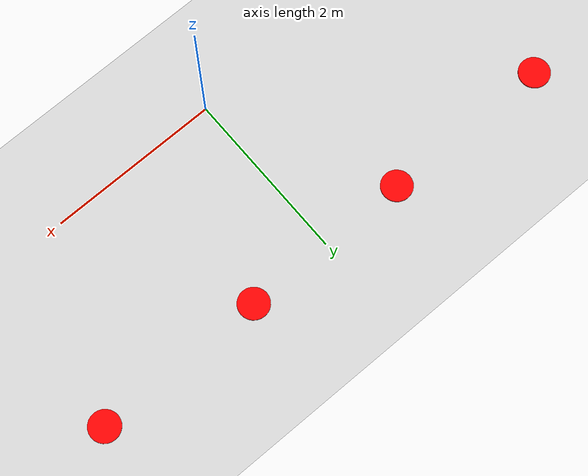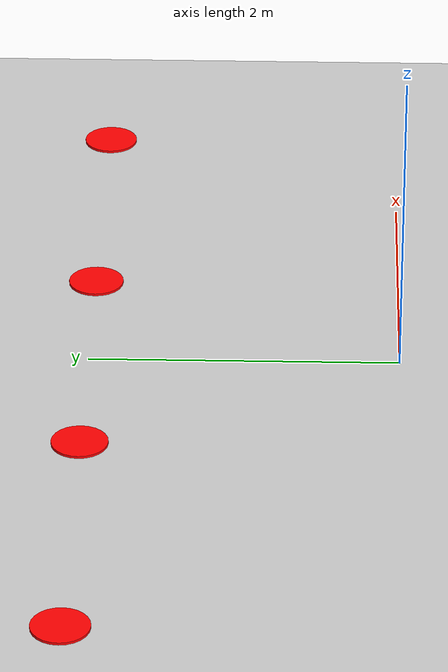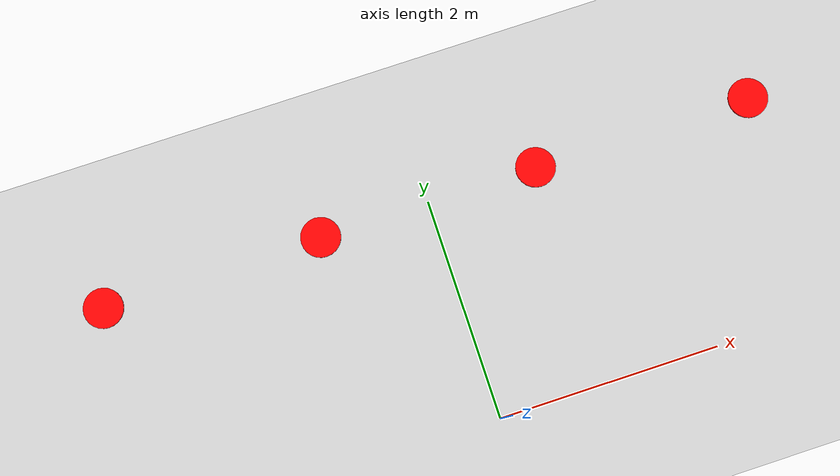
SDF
<sdf version="1.7">
 <world name="default">
  <light name="sun" type="directional">
   <pose>0 0 10 0 -0 0</pose>
   <diffuse>0.8 0.8 0.8 1</diffuse>
   <specular>0.2 0.2 0.2 1</specular>
   <attenuation>
    <range>1000</range>
    <constant>0.9</constant>
    <linear>0.01</linear>
    <quadratic>0.001</quadratic>
   </attenuation>
   <direction>-0.5 0.1 -0.9</direction>
   <spot><inner_angle>0</inner_angle><outer_angle>0</outer_angle><falloff>0</falloff></spot>
  </light>
  <model name="ground_plane">
   <static>1</static>
   <link name="link">
    <collision name="collision">
     <geometry><plane><normal>0 0 1</normal><size>100 100</size></plane></geometry>
     <surface>
      <contact><collide_bitmask>65535</collide_bitmask></contact>
      <friction><ode><mu>100</mu><mu2>50</mu2></ode></friction>
     </surface>
    </collision>
    <visual name="visual">
     <cast_shadows>0</cast_shadows>
     <geometry><plane><normal>0 0 1</normal><size>100 100</size></plane></geometry>
     <material>
      <ambient>0 0 0 1</ambient>
      <diffuse>0 0 0 1</diffuse>
      <specular>0 0 0 1</specular>
      <emissive>0 0 0 0</emissive>
      <script><uri>file://media/materials/scripts/gazebo.material</uri><name>Gazebo/Grey</name></script>
     </material>
    </visual>
   </link>
  </model>
  <gravity>0 0 -9.8</gravity>
  <magnetic_field>6e-06 2.3e-05 -4.2e-05</magnetic_field>
  <atmosphere type="adiabatic"/>
  <physics type="ode">
   <max_step_size>0.001</max_step_size>
   <real_time_factor>1</real_time_factor>
   <real_time_update_rate>1000</real_time_update_rate>
  </physics>
  <scene><ambient>0.4 0.4 0.4 1</ambient><background>0.7 0.7 0.7 1</background><shadows>1</shadows></scene>
  <spherical_coordinates>
   <surface_model>EARTH_WGS84</surface_model>
   <latitude_deg>0</latitude_deg>
   <longitude_deg>0</longitude_deg>
   <elevation>0</elevation>
   <heading_deg>0</heading_deg>
  </spherical_coordinates>
  <model name="zone_1">
   <pose>-3 2 0 0 -0 0</pose>
   <static>1</static>
   <link name="link">
    <visual name="unit_cylinder">
     <geometry><cylinder><radius>0.18</radius><length>0.02</length></cylinder></geometry>
     <material>
      <ambient>1 0 0 1</ambient>
      <diffuse>1 0 0 1</diffuse>
      <specular>0.1 0.1 0.1 1</specular>
      <emissive>0 0 0 0</emissive>
      <script><uri>file://media/materials/scripts/gazebo.material</uri><name>__default__</name></script>
     </material>
    </visual>
   </link>
  </model>
  <model name="zone_2">
   <pose>-1 2 0 0 -0 0</pose>
   <static>1</static>
   <link name="link">
    <visual name="unit_cylinder">
     <geometry><cylinder><radius>0.18</radius><length>0.02</length></cylinder></geometry>
     <material>
      <ambient>1 0 0 1</ambient>
      <diffuse>1 0 0 1</diffuse>
      <specular>0.1 0.1 0.1 1</specular>
      <emissive>0 0 0 0</emissive>
      <script><uri>file://media/materials/scripts/gazebo.material</uri><name>__default__</name></script>
     </material>
    </visual>
   </link>
  </model>
  <model name="zone_3">
   <pose>1 2 0 0 -0 0</pose>
   <static>1</static>
   <link name="link">
    <visual name="unit_cylinder">
     <geometry><cylinder><radius>0.18</radius><length>0.02</length></cylinder></geometry>
     <material>
      <ambient>1 0 0 1</ambient>
      <diffuse>1 0 0 1</diffuse>
      <specular>0.1 0.1 0.1 1</specular>
      <emissive>0 0 0 0</emissive>
      <script><uri>file://media/materials/scripts/gazebo.material</uri><name>__default__</name></script>
     </material>
    </visual>
   </link>
  </model>
  <model name="zone_4">
   <pose>3 2 0 0 -0 0</pose>
   <static>1</static>
   <link name="link">
    <visual name="unit_cylinder">
     <geometry><cylinder><radius>0.18</radius><length>0.02</length></cylinder></geometry>
     <material>
      <ambient>1 0 0 1</ambient>
      <diffuse>1 0 0 1</diffuse>
      <specular>0.1 0.1 0.1 1</specular>
      <emissive>0 0 0 0</emissive>
      <script><uri>file://media/materials/scripts/gazebo.material</uri><name>__default__</name></script>
     </material>
    </visual>
   </link>
  </model>
 </world>
</sdf>
